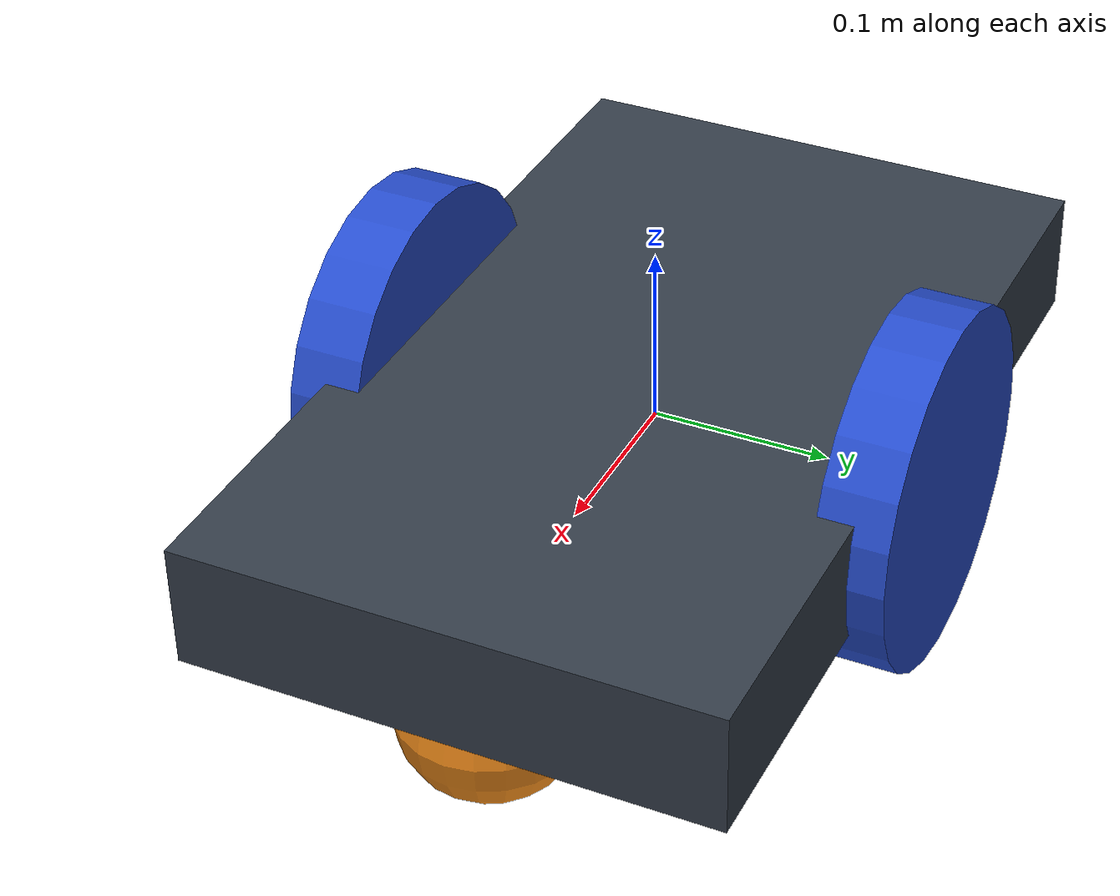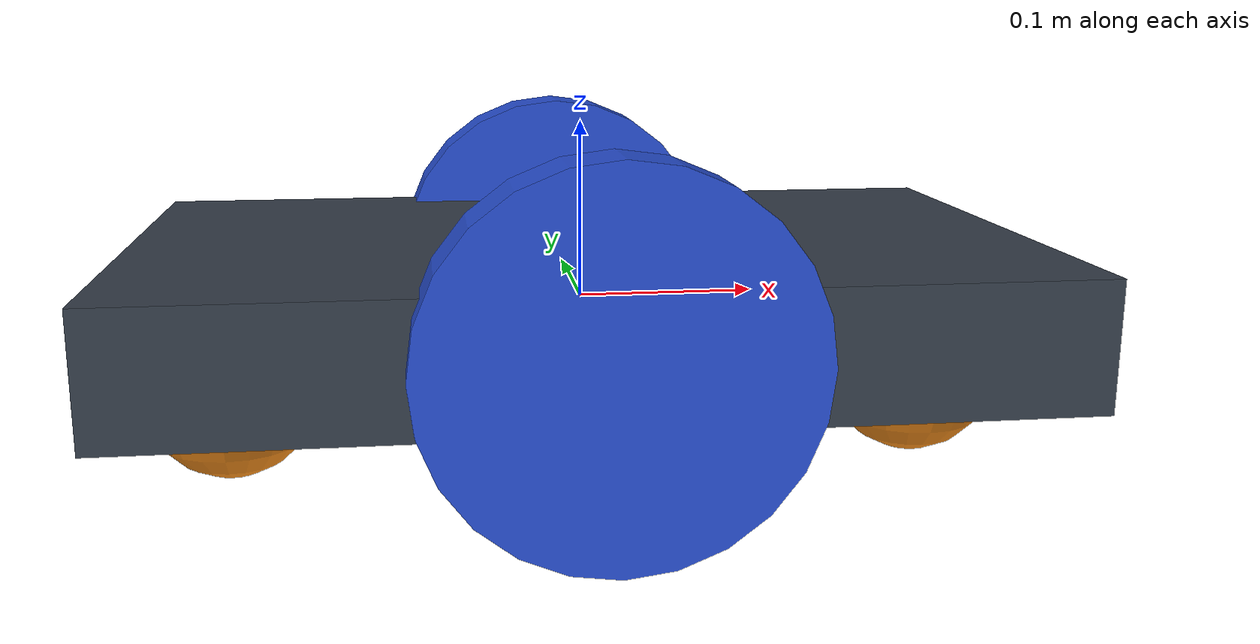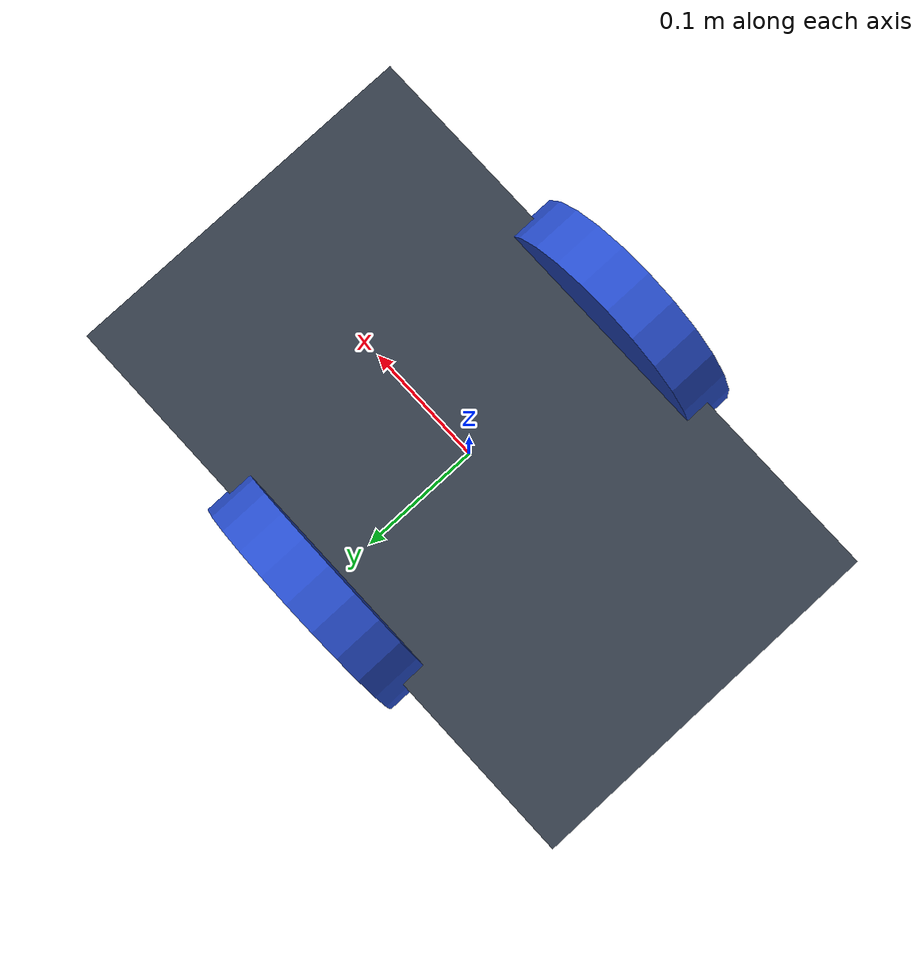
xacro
<?xml version="1.0" ?>

<robot name="m2wr" xmlns:xacro="https://www.ros.org/wiki/xacro" >

  <material name="black">
    <color rgba="0.0 0.0 0.0 1.0"/>
  </material>
  <material name="blue">
    <color rgba="0.203125 0.23828125 0.28515625 1.0"/>
  </material>
  <material name="green">
    <color rgba="0.0 0.8 0.0 1.0"/>
  </material>
  <material name="grey">
    <color rgba="0.2 0.2 0.2 1.0"/>
  </material>
  <material name="orange">
    <color rgba="1.0 0.423529411765 0.0392156862745 1.0"/>
  </material>
  <material name="brown">
    <color rgba="0.870588235294 0.811764705882 0.764705882353 1.0"/>
  </material>
  <material name="red">
    <color rgba="0.80078125 0.12890625 0.1328125 1.0"/>
  </material>
  <material name="white">
    <color rgba="1.0 1.0 1.0 1.0"/>
  </material>

  <gazebo reference="base_link_2">
    <material>Gazebo/Orange</material>
  </gazebo>
  <gazebo reference="link_left_wheel_2">
    <material>Gazebo/Blue</material>
  </gazebo>
  <gazebo reference="link_right_wheel_2">
    <material>Gazebo/Blue</material>
  </gazebo>

  <link name="base_link_2">
    <!-- pose and inertial -->
    <pose>0 0 0.1 0 0 0</pose>

    <inertial>
      <mass value="5"/>
      <origin rpy="0 0 0" xyz="0 0 0.1"/>
      <inertia ixx="0.0395416666667" ixy="0" ixz="0" iyy="0.106208333333" iyz="0" izz="0.106208333333"/>
    </inertial>

    <collision name="collision_chassis">
      <geometry>
        <box size="0.5 0.3 0.07"/>
      </geometry>
    </collision>

    <visual>
      <origin rpy="0 0 0" xyz="0 0 0"/>
      <geometry>
        <box size="0.5 0.3 0.07"/>
      </geometry>
      <material name="blue"/>
    </visual>

    <!-- caster front -->
    <collision name="caster_front_collision">
      <origin rpy=" 0 0 0" xyz="0.35 0 -0.05"/>
      <geometry>
        <sphere radius="0.05"/>
      </geometry>
      <surface>
        <friction>
          <ode>
            <mu>0</mu>
            <mu2>0</mu2>
            <slip1>1.0</slip1>
            <slip2>1.0</slip2>
          </ode>
        </friction>
      </surface>
    </collision>
    <visual name="caster_front_visual">
      <origin rpy=" 0 0 0" xyz="0.2 0 -0.05"/>
      <geometry>
        <sphere radius="0.05"/>
      </geometry>
    </visual>

    <!-- caster back -->
    <collision name="caster_back_collision">
      <origin rpy=" 0 0 0" xyz="-0.35 0 -0.05"/>
      <geometry>
        <sphere radius="0.05"/>
      </geometry>
      <surface>
        <friction>
          <ode>
            <mu>0</mu>
            <mu2>0</mu2>
            <slip1>1.0</slip1>
            <slip2>1.0</slip2>
          </ode>
        </friction>
      </surface>
    </collision>
    <visual name="caster_back_visual">
      <origin rpy=" 0 0 0" xyz="-0.2 0 -0.05"/>
      <geometry>
        <sphere radius="0.05"/>
      </geometry>
    </visual>
  </link>

  <!-- Create wheel right -->

  <link name="link_right_wheel_2">
    <inertial>
      <mass value="0.2"/>
      <origin rpy="0 1.5707 1.5707" xyz="0 0 0"/>
      <inertia ixx="0.00052666666" ixy="0" ixz="0" iyy="0.00052666666" iyz="0" izz="0.001"/>
    </inertial>

    <collision name="link_right_wheel_collision">
      <origin rpy="0 1.5707 1.5707" xyz="0 0 0" />
      <geometry>
        <cylinder length="0.04" radius="0.1"/>
      </geometry>
    </collision>

    <visual name="link_right_wheel_visual">
      <origin rpy="0 1.5707 1.5707" xyz="0 0 0"/>
      <geometry>
        <cylinder length="0.04" radius="0.1"/>
      </geometry>
    </visual>

  </link>

  <!--   Joint for right wheel  -->
  <joint name="joint_right_wheel" type="continuous">
    <origin rpy="0 0 0" xyz="0. 0.15 0"/>
    <child link="link_right_wheel_2" />
    <parent link="base_link_2"/>
    <axis rpy="0 0 0" xyz="0 1 0"/>
    <limit effort="10000" velocity="1000"/>
    <joint_properties damping="1.0" friction="1.0" />
  </joint>

  <!-- Left Wheel link -->

  <link name="link_left_wheel_2">
    <inertial>
      <mass value="0.2"/>
      <origin rpy="0 1.5707 1.5707" xyz="0 0 0"/>
      <inertia ixx="0.00052666666" ixy="0" ixz="0" iyy="0.00052666666" iyz="0" izz="0.001"/>
    </inertial>

    <collision name="link_left_wheel_2_collision">
      <origin rpy="0 1.5707 1.5707" xyz="0 0 0" />
      <geometry>
        <cylinder length="0.04" radius="0.1"/>
      </geometry>
    </collision>

    <visual name="link_left_wheel_2_visual">
      <origin rpy="0 1.5707 1.5707" xyz="0 0 0"/>
      <geometry>
        <cylinder length="0.04" radius="0.1"/>
      </geometry>
    </visual>

  </link>

  <!--   Joint for right wheel  -->
  <joint name="joint_left_wheel" type="continuous">
    <origin rpy="0 0 0" xyz="0. -0.15 0"/>
    <child link="link_left_wheel_2" />
    <parent link="base_link_2"/>
    <axis rpy="0 0 0" xyz="0 1 0"/>
    <limit effort="10000" velocity="1000"/>
    <joint_properties damping="1.0" friction="1.0" />
  </joint>

  <gazebo>
    <plugin filename="libgazebo_ros_diff_drive.so" name="differential_drive_controller">
      <alwaysOn>true</alwaysOn>
      <updateRate>20</updateRate>
      <leftJoint>joint_left_wheel</leftJoint>
      <rightJoint>joint_right_wheel</rightJoint>
      <wheelSeparation>0.4</wheelSeparation>
      <wheelDiameter>0.2</wheelDiameter>
      <torque>0.1</torque>
      <commandTopic>cmd_vel</commandTopic>
      <odometryTopic>/odom/robot_2</odometryTopic>
      <odometryFrame>/odom/robot_2</odometryFrame>
      <robotBaseFrame>/base_link_2</robotBaseFrame>
      <legacyMode>true</legacyMode>
    </plugin>
  </gazebo>

</robot>
